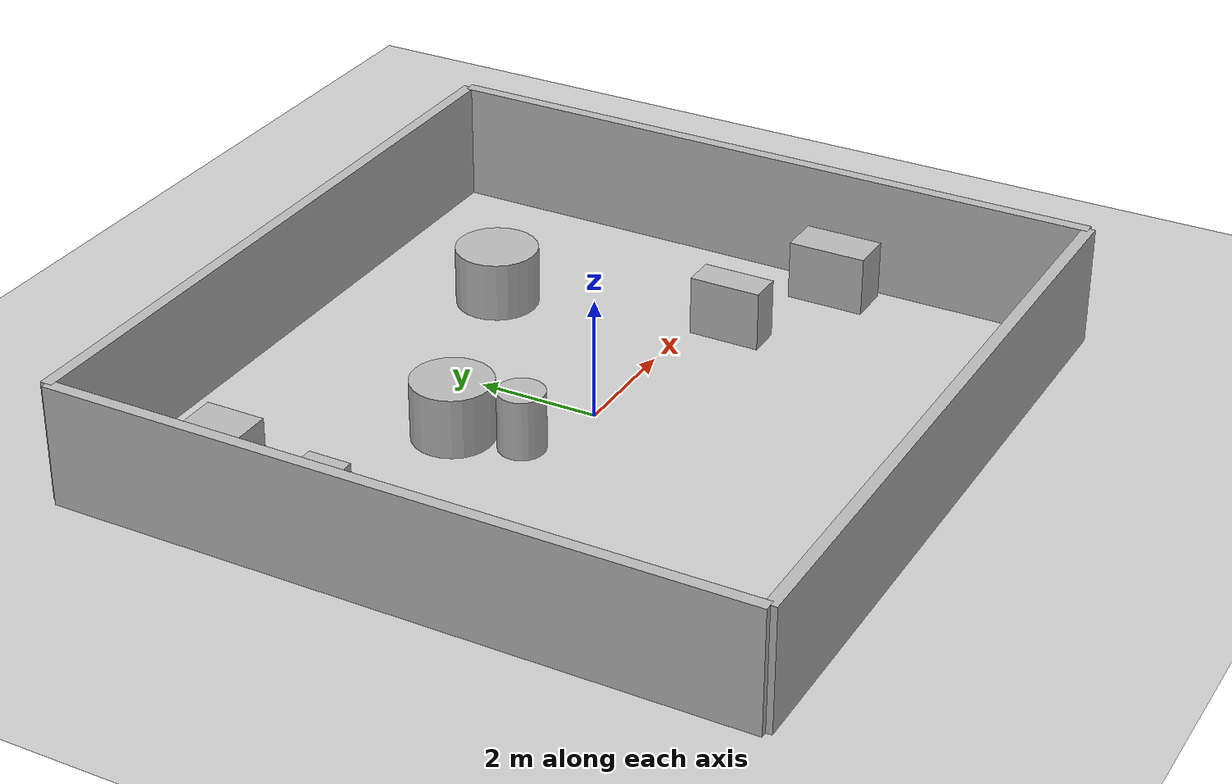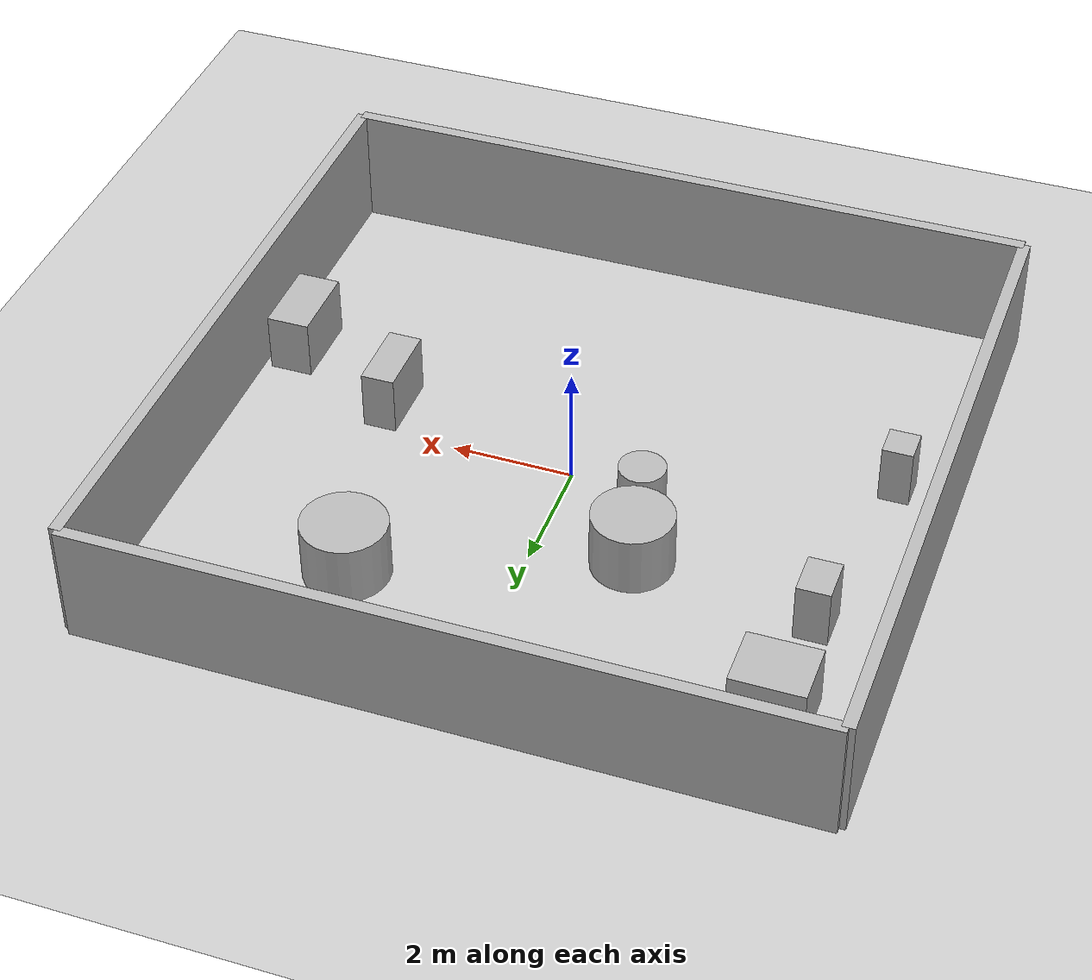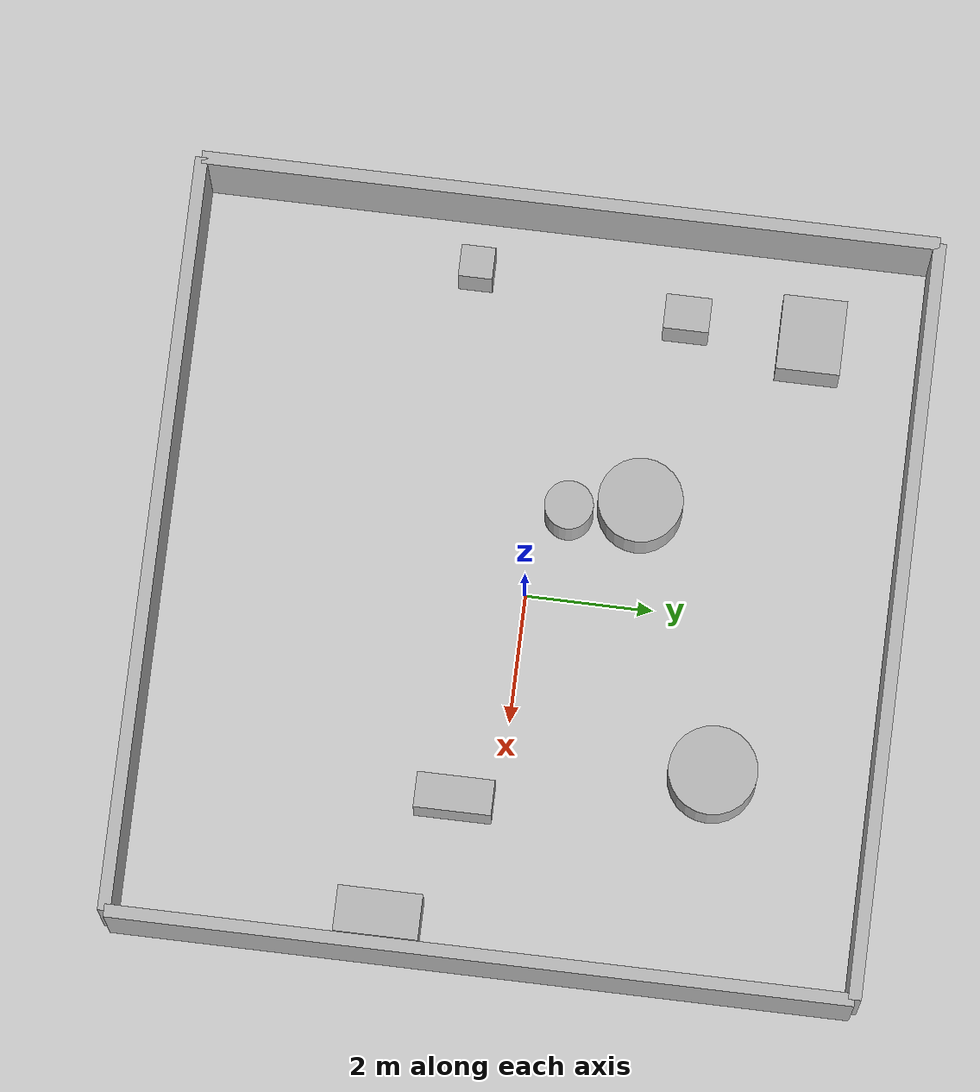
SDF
<?xml version="1.0"?>
<sdf version="1.6">
  <world name="env_62">

    <include><uri>model://ground_plane</uri></include>
    <include><uri>model://sun</uri></include>

    <!-- WALLS -->
    <model name="wall_north"><static>true</static><pose>0 5.708616837654011 1 0 0 0</pose>
      <link name="link"><collision name="collision">
        <geometry><box><size>11.736523222337137 0.2 2</size></box></geometry>
      </collision><visual name="visual">
        <geometry><box><size>11.736523222337137 0.2 2</size></box></geometry>
      </visual></link>
    </model>

    <model name="wall_south"><static>true</static><pose>0 -5.708616837654011 1 0 0 0</pose>
      <link name="link"><collision name="collision">
        <geometry><box><size>11.736523222337137 0.2 2</size></box></geometry>
      </collision><visual name="visual">
        <geometry><box><size>11.736523222337137 0.2 2</size></box></geometry>
      </visual></link>
    </model>

    <model name="wall_east"><static>true</static><pose>5.868261611168569 0 1 0 0 1.57</pose>
      <link name="link"><collision name="collision">
        <geometry><box><size>11.417233675308022 0.2 2</size></box></geometry>
      </collision><visual name="visual">
        <geometry><box><size>11.417233675308022 0.2 2</size></box></geometry>
      </visual></link>
    </model>

    <model name="wall_west"><static>true</static><pose>-5.868261611168569 0 1 0 0 1.57</pose>
      <link name="link"><collision name="collision">
        <geometry><box><size>11.417233675308022 0.2 2</size></box></geometry>
      </collision><visual name="visual">
        <geometry><box><size>11.417233675308022 0.2 2</size></box></geometry>
      </visual></link>
    </model>

    <!-- SENSOR -->

    <model name="lidar_sensor">
      <static>true</static>
      <pose>-0.36814850244653297 -0.10054770400220292 0.4 0 0 0</pose>
      <link name="link">
        <sensor name="lidar" type="ray">
          <pose>0 0 0 0 0 0</pose>
          <visualize>true</visualize>
          <always_on>true</always_on>
          <update_rate>10</update_rate>
          <ray>
            <scan><horizontal>
              <samples>720</samples>
              <resolution>1</resolution>
              <min_angle>-3.14159</min_angle>
              <max_angle>3.14159</max_angle>
            </horizontal></scan>
            <range><min>0.15</min><max>20.0</max><resolution>0.01</resolution></range>
          </ray>
          <plugin name="lidar_plugin" filename="liblidar_plugin.so"/>
        </sensor>
      </link>
    </model>

    <!-- OBSTACLES -->

    <model name="obstacle_0">
      <static>true</static>
      <pose>-4.534545570296696 1.9862070471619537 0.5 0 0 0</pose>
      <link name="link">
        <collision name="collision">
          <geometry><box><size>0.54 0.71 1.0</size></box></geometry>
        </collision>
        <visual name="visual">
          <geometry><box><size>0.54 0.71 1.0</size></box></geometry>
        </visual>
      </link>
    </model>

    <model name="obstacle_1">
      <static>true</static>
      <pose>3.329961732299605 -0.6954651931149405 0.5 0 0 0</pose>
      <link name="link">
        <collision name="collision">
          <geometry><box><size>0.55 1.2 1.0</size></box></geometry>
        </collision>
        <visual name="visual">
          <geometry><box><size>0.55 1.2 1.0</size></box></geometry>
        </visual>
      </link>
    </model>

    <model name="obstacle_2">
      <static>true</static>
      <pose>5.285894043350439 -1.629327446379774 0.5 0 0 0</pose>
      <link name="link">
        <collision name="collision">
          <geometry><box><size>0.71 1.31 1.0</size></box></geometry>
        </collision>
        <visual name="visual">
          <geometry><box><size>0.71 1.31 1.0</size></box></geometry>
        </visual>
      </link>
    </model>

    <model name="obstacle_3">
      <static>true</static>
      <pose>-4.954092462480731 -1.3417741218758619 0.5 0 0 0</pose>
      <link name="link">
        <collision name="collision">
          <geometry><box><size>0.5 0.53 1.0</size></box></geometry>
        </collision>
        <visual name="visual">
          <geometry><box><size>0.5 0.53 1.0</size></box></geometry>
        </visual>
      </link>
    </model>

    <model name="obstacle_4">
      <static>true</static>
      <pose>2.5033413575889822 3.1950368202028265 0.5 0 0 0</pose>
      <link name="link">
        <collision name="collision">
          <geometry><cylinder><radius>0.69</radius><length>1.0</length></cylinder></geometry>
        </collision>
        <visual name="visual">
          <geometry><cylinder><radius>0.69</radius><length>1.0</length></cylinder></geometry>
        </visual>
      </link>
    </model>

    <model name="obstacle_5">
      <static>true</static>
      <pose>-4.423546042937305 3.9297011824819954 0.5 0 0 0</pose>
      <link name="link">
        <collision name="collision">
          <geometry><box><size>1.17 0.99 1.0</size></box></geometry>
        </collision>
        <visual name="visual">
          <geometry><box><size>1.17 0.99 1.0</size></box></geometry>
        </visual>
      </link>
    </model>

    <model name="obstacle_6">
      <static>true</static>
      <pose>-1.3284508978090601 0.5197889669744367 0.5 0 0 0</pose>
      <link name="link">
        <collision name="collision">
          <geometry><cylinder><radius>0.38</radius><length>1.0</length></cylinder></geometry>
        </collision>
        <visual name="visual">
          <geometry><cylinder><radius>0.38</radius><length>1.0</length></cylinder></geometry>
        </visual>
      </link>
    </model>

    <model name="obstacle_7">
      <static>true</static>
      <pose>-1.5334893407662271 1.6065532714535182 0.5 0 0 0</pose>
      <link name="link">
        <collision name="collision">
          <geometry><cylinder><radius>0.66</radius><length>1.0</length></cylinder></geometry>
        </collision>
        <visual name="visual">
          <geometry><cylinder><radius>0.66</radius><length>1.0</length></cylinder></geometry>
        </visual>
      </link>
    </model>

  </world>
</sdf>
